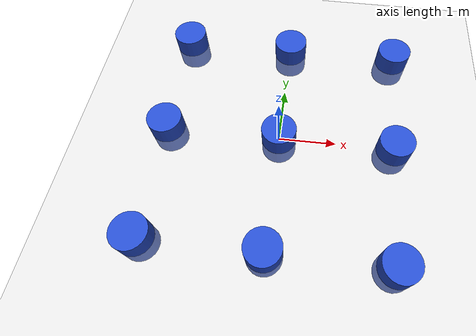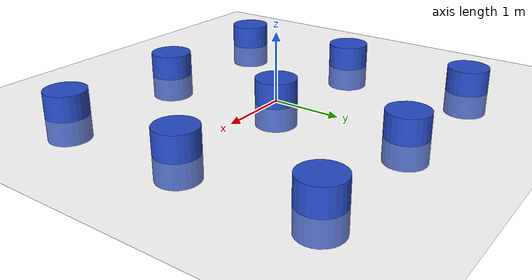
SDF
<?xml version="1.0" ?>
<sdf version="1.5">
  <world name="restaurant">
    <include>
      <uri>model://sun</uri>
    </include>
    <include>
      <uri>model://ground_plane</uri>
    </include>

    <!-- 테이블 1 (좌측 상단) -->
    <model name="table1">
      <static>true</static>
      <pose>-2 2 0 0 0 0</pose>
      <link name="link">
        <collision name="collision">
          <geometry>
            <cylinder>
              <radius>0.3</radius>
              <length>0.7</length>
            </cylinder>
          </geometry>
        </collision>
        <visual name="visual">
          <geometry>
            <cylinder>
              <radius>0.3</radius>
              <length>0.7</length>
            </cylinder>
          </geometry>
          <material>
            <script>
              <uri>file://media/materials/scripts/gazebo.material</uri>
              <name>Gazebo/Blue</name>
            </script>
          </material>
        </visual>
      </link>
    </model>

    <!-- 테이블 2 (중앙 상단) -->
    <model name="table2">
      <static>true</static>
      <pose>0 2 0 0 0 0</pose>
      <link name="link">
        <collision name="collision">
          <geometry>
            <cylinder>
              <radius>0.3</radius>
              <length>0.7</length>
            </cylinder>
          </geometry>
        </collision>
        <visual name="visual">
          <geometry>
            <cylinder>
              <radius>0.3</radius>
              <length>0.7</length>
            </cylinder>
          </geometry>
          <material>
            <script>
              <uri>file://media/materials/scripts/gazebo.material</uri>
              <name>Gazebo/Blue</name>
            </script>
          </material>
        </visual>
      </link>
    </model>

    <!-- 테이블 3 (우측 상단) -->
    <model name="table3">
      <static>true</static>
      <pose>2 2 0 0 0 0</pose>
      <link name="link">
        <collision name="collision">
          <geometry>
            <cylinder>
              <radius>0.3</radius>
              <length>0.7</length>
            </cylinder>
          </geometry>
        </collision>
        <visual name="visual">
          <geometry>
            <cylinder>
              <radius>0.3</radius>
              <length>0.7</length>
            </cylinder>
          </geometry>
          <material>
            <script>
              <uri>file://media/materials/scripts/gazebo.material</uri>
              <name>Gazebo/Blue</name>
            </script>
          </material>
        </visual>
      </link>
    </model>

    <!-- 테이블 4 (좌측 중앙) -->
    <model name="table4">
      <static>true</static>
      <pose>-2 0 0 0 0 0</pose>
      <link name="link">
        <collision name="collision">
          <geometry>
            <cylinder>
              <radius>0.3</radius>
              <length>0.7</length>
            </cylinder>
          </geometry>
        </collision>
        <visual name="visual">
          <geometry>
            <cylinder>
              <radius>0.3</radius>
              <length>0.7</length>
            </cylinder>
          </geometry>
          <material>
            <script>
              <uri>file://media/materials/scripts/gazebo.material</uri>
              <name>Gazebo/Blue</name>
            </script>
          </material>
        </visual>
      </link>
    </model>

    <!-- 테이블 5 (중앙) -->
    <model name="table5">
      <static>true</static>
      <pose>0 0 0 0 0 0</pose>
      <link name="link">
        <collision name="collision">
          <geometry>
            <cylinder>
              <radius>0.3</radius>
              <length>0.7</length>
            </cylinder>
          </geometry>
        </collision>
        <visual name="visual">
          <geometry>
            <cylinder>
              <radius>0.3</radius>
              <length>0.7</length>
            </cylinder>
          </geometry>
          <material>
            <script>
              <uri>file://media/materials/scripts/gazebo.material</uri>
              <name>Gazebo/Blue</name>
            </script>
          </material>
        </visual>
      </link>
    </model>

    <!-- 테이블 6 (우측 중앙) -->
    <model name="table6">
      <static>true</static>
      <pose>2 0 0 0 0 0</pose>
      <link name="link">
        <collision name="collision">
          <geometry>
            <cylinder>
              <radius>0.3</radius>
              <length>0.7</length>
            </cylinder>
          </geometry>
        </collision>
        <visual name="visual">
          <geometry>
            <cylinder>
              <radius>0.3</radius>
              <length>0.7</length>
            </cylinder>
          </geometry>
          <material>
            <script>
              <uri>file://media/materials/scripts/gazebo.material</uri>
              <name>Gazebo/Blue</name>
            </script>
          </material>
        </visual>
      </link>
    </model>

    <!-- 테이블 7 (좌측 하단) -->
    <model name="table7">
      <static>true</static>
      <pose>-2 -2 0 0 0 0</pose>
      <link name="link">
        <collision name="collision">
          <geometry>
            <cylinder>
              <radius>0.3</radius>
              <length>0.7</length>
            </cylinder>
          </geometry>
        </collision>
        <visual name="visual">
          <geometry>
            <cylinder>
              <radius>0.3</radius>
              <length>0.7</length>
            </cylinder>
          </geometry>
          <material>
            <script>
              <uri>file://media/materials/scripts/gazebo.material</uri>
              <name>Gazebo/Blue</name>
            </script>
          </material>
        </visual>
      </link>
    </model>

    <!-- 테이블 8 (중앙 하단) -->
    <model name="table8">
      <static>true</static>
      <pose>0 -2 0 0 0 0</pose>
      <link name="link">
        <collision name="collision">
          <geometry>
            <cylinder>
              <radius>0.3</radius>
              <length>0.7</length>
            </cylinder>
          </geometry>
        </collision>
        <visual name="visual">
          <geometry>
            <cylinder>
              <radius>0.3</radius>
              <length>0.7</length>
            </cylinder>
          </geometry>
          <material>
            <script>
              <uri>file://media/materials/scripts/gazebo.material</uri>
              <name>Gazebo/Blue</name>
            </script>
          </material>
        </visual>
      </link>
    </model>

    <!-- 테이블 9 (우측 하단) -->
    <model name="table9">
      <static>true</static>
      <pose>2 -2 0 0 0 0</pose>
      <link name="link">
        <collision name="collision">
          <geometry>
            <cylinder>
              <radius>0.3</radius>
              <length>0.7</length>
            </cylinder>
          </geometry>
        </collision>
        <visual name="visual">
          <geometry>
            <cylinder>
              <radius>0.3</radius>
              <length>0.7</length>
            </cylinder>
          </geometry>
          <material>
            <script>
              <uri>file://media/materials/scripts/gazebo.material</uri>
              <name>Gazebo/Blue</name>
            </script>
          </material>
        </visual>
      </link>
    </model>

  </world>
</sdf>
